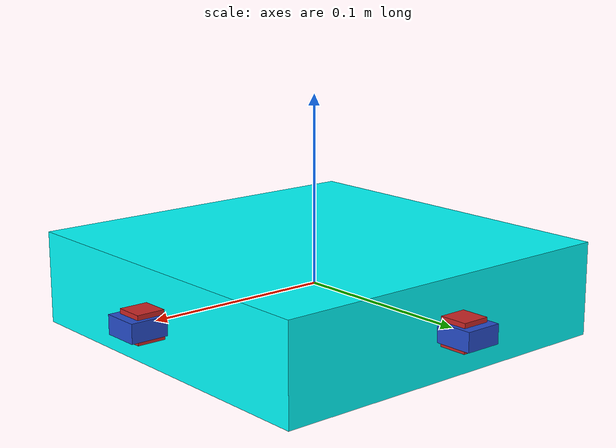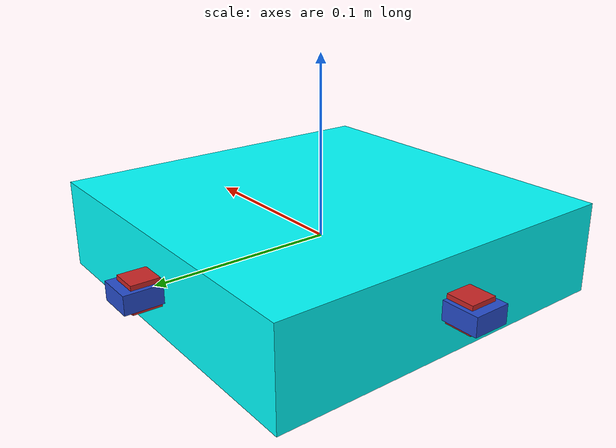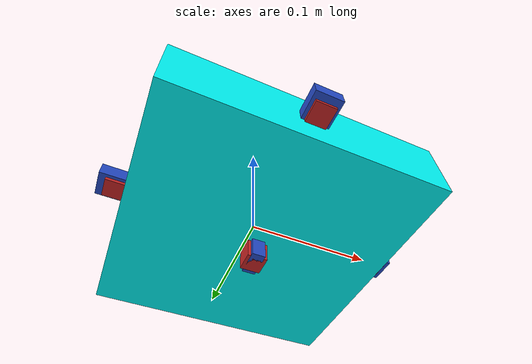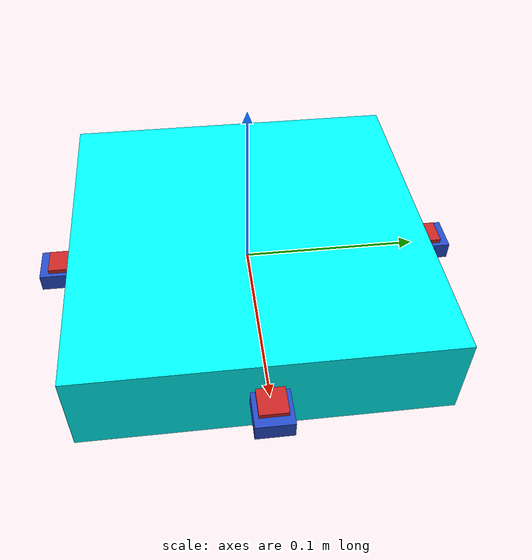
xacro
<?xml version='1.0'?>

<robot name="robot" xmlns:xacro="http://www.ros.org/wiki/xacro">

  <!-- ==================== PROPERTIES ==================== -->

  <xacro:property name="camera_width"  value="0.02"/>
  <xacro:property name="camera_length" value="0.02"/>
  <xacro:property name="camera_height" value="0.01"/>
  <xacro:property name="camera_mass"   value="0.01"/>

  <xacro:property name="chassis_width"  value="0.2"/>
  <xacro:property name="chassis_length" value="0.2"/>
  <xacro:property name="chassis_height" value="0.05"/>
  <xacro:property name="chassis_mass"   value="20"/>

  <xacro:property name="range_sensor_size" value="0.015"/>
  <xacro:property name="range_sensor_mass" value="0.01"/>
  <xacro:property name="range_min"         value="0.02"/>
  <xacro:property name="range_max"         value="5.0"/>
  <xacro:property name="range_resolution"  value="0.01"/>

  <!-- ==================== INCLUDES ==================== -->

  <xacro:include filename="$(find robbie2)/urdf/macros.xacro"/>
  <xacro:include filename="$(find robbie2)/urdf/materials.xacro"/>

  <!-- ==================== MACRO: camera_sensor ==================== -->

  <xacro:macro name="camera_sensor" params="name parent xyz rpy">
    <link name="${name}_link">
      <xacro:box_inertial name="${name}_link" m="${camera_mass}"
                          x="${camera_length}" y="${camera_width}" z="${camera_height}"/>
      <collision name="${name}_collision">
        <geometry><box size="${camera_length} ${camera_width} ${camera_height}"/></geometry>
      </collision>
      <visual name="${name}_visual">
        <geometry><box size="${camera_length} ${camera_width} ${camera_height}"/></geometry>
      </visual>
    </link>

    <joint name="${name}_joint" type="fixed">
      <parent link="${parent}"/>
      <child  link="${name}_link"/>
      <origin xyz="${xyz}" rpy="${rpy}"/>
    </joint>

    <gazebo reference="${name}_link">
      <material>Gazebo/Blue</material>
    </gazebo>

    <gazebo reference="${name}_link">
      <sensor type="camera" name="${name}_sensor">
        <update_rate>30.0</update_rate>
        <camera name="${name}">
          <horizontal_fov>1.3962634</horizontal_fov>
          <image>
            <width>800</width>
            <height>800</height>
            <format>R8G8B8</format>
          </image>
          <clip>
            <near>0.02</near>
            <far>300</far>
          </clip>
          <noise>
            <type>gaussian</type>
            <mean>0.0</mean>
            <stddev>0.007</stddev>
          </noise>
        </camera>
        <plugin name="${name}_controller" filename="libgazebo_ros_camera.so">
          <alwaysOn>true</alwaysOn>
          <updateRate>0.0</updateRate>
          <cameraName>robot/${name}</cameraName>
          <imageTopicName>image_raw</imageTopicName>
          <cameraInfoTopicName>camera_info</cameraInfoTopicName>
          <frameName>${name}_link</frameName>
        </plugin>
      </sensor>
    </gazebo>
  </xacro:macro>

  <!-- ==================== MACRO: range_sensor ==================== -->

  <xacro:macro name="range_sensor" params="name parent xyz rpy topic">
    <link name="${name}_link">
      <xacro:box_inertial name="${name}_link" m="${range_sensor_mass}"
                          x="${range_sensor_size}" y="${range_sensor_size}" z="${range_sensor_size}"/>
      <collision name="${name}_collision">
        <geometry><box size="${range_sensor_size} ${range_sensor_size} ${range_sensor_size}"/></geometry>
      </collision>
      <visual name="${name}_visual">
        <geometry><box size="${range_sensor_size} ${range_sensor_size} ${range_sensor_size}"/></geometry>
      </visual>
    </link>

    <joint name="${name}_joint" type="fixed">
      <parent link="${parent}"/>
      <child  link="${name}_link"/>
      <origin xyz="${xyz}" rpy="${rpy}"/>
    </joint>

    <gazebo reference="${name}_link">
      <material>Gazebo/Red</material>
    </gazebo>

    <gazebo reference="${name}_link">
      <sensor type="ray" name="${name}_sensor">
        <update_rate>20.0</update_rate>
        <ray>
          <scan>
            <horizontal>
              <samples>1</samples>
              <resolution>1</resolution>
              <min_angle>0.0</min_angle>
              <max_angle>0.0</max_angle>
            </horizontal>
          </scan>
          <range>
            <min>${range_min}</min>
            <max>${range_max}</max>
            <resolution>${range_resolution}</resolution>
          </range>
        </ray>
        <plugin name="${name}_plugin" filename="libgazebo_ros_range.so">
          <robotNamespace>/B1</robotNamespace>
          <topicName>${topic}</topicName>
          <frameName>${name}_link</frameName>
          <radiation>infrared</radiation>
          <fov>0.05</fov>
          <gaussianNoise>0.0</gaussianNoise>
        </plugin>
      </sensor>
    </gazebo>
  </xacro:macro>

  <!-- ==================== CHASSIS ==================== -->

  <link name='chassis'>
    <xacro:box_inertial name="chassis" m="${chassis_mass}"
                        x="${chassis_length}" y="${chassis_width}" z="${chassis_height}"/>
    <collision name='chassis_collision'>
      <geometry><box size="${chassis_length} ${chassis_width} ${chassis_height}"/></geometry>
    </collision>
    <visual name='chassis_visual'>
      <origin xyz="0 0 0" rpy="0 0 0"/>
      <geometry><box size="${chassis_length} ${chassis_width} ${chassis_height}"/></geometry>
      <material name="Cyan">
        <color rgba="0 1.0 1.0 1.0"/>
      </material>
    </visual>
  </link>

  <!-- ==================== CAMERAS ==================== -->

  <!-- front: looks along +X -->
  <xacro:camera_sensor name="camera_front" parent="chassis"
    xyz="${chassis_length/2 + camera_length/2} 0 0"
    rpy="0 0 0"/>

  <!-- back: looks along -X -->
  <xacro:camera_sensor name="camera_back" parent="chassis"
    xyz="-${chassis_length/2 + camera_length/2} 0 0"
    rpy="0 0 3.14159265359"/>

  <!-- left: looks along +Y -->
  <xacro:camera_sensor name="camera_left" parent="chassis"
    xyz="0 ${chassis_width/2 + camera_length/2} 0"
    rpy="0 0 1.5707963268"/>

  <!-- right: looks along -Y -->
  <xacro:camera_sensor name="camera_right" parent="chassis"
    xyz="0 -${chassis_width/2 + camera_length/2} 0"
    rpy="0 0 -1.5707963268"/>

  <!-- down: looks along -Z (pitch +90 deg rotates +X to -Z) -->
  <xacro:camera_sensor name="camera_down" parent="chassis"
    xyz="0 0 -${chassis_height/2 + camera_height/2}"
    rpy="0 1.5707963268 0"/>

  <!-- ==================== RANGE SENSORS ==================== -->

  <xacro:range_sensor name="range_front" parent="chassis"
    xyz="${chassis_length/2 + range_sensor_size/2} 0 0"
    rpy="0 0 0" topic="range_front"/>

  <xacro:range_sensor name="range_back" parent="chassis"
    xyz="-${chassis_length/2 + range_sensor_size/2} 0 0"
    rpy="0 0 3.14159265359" topic="range_back"/>

  <xacro:range_sensor name="range_left" parent="chassis"
    xyz="0 ${chassis_width/2 + range_sensor_size/2} 0"
    rpy="0 0 1.5707963268" topic="range_left"/>

  <xacro:range_sensor name="range_right" parent="chassis"
    xyz="0 -${chassis_width/2 + range_sensor_size/2} 0"
    rpy="0 0 -1.5707963268" topic="range_right"/>

  <xacro:range_sensor name="range_down" parent="chassis"
    xyz="0 0 -${chassis_height/2 + range_sensor_size/2}"
    rpy="0 1.5707963268 0" topic="range_down"/>

  <!-- ==================== GAZEBO PLUGINS ==================== -->

  <gazebo reference="chassis">
    <material>Gazebo/Orange</material>
    <enable_wind>true</enable_wind>
  </gazebo>

  <!-- Force controller: subscribe to /B1/cmd_force (geometry_msgs/Wrench) -->
  <gazebo>
    <plugin name="force_controller" filename="libgazebo_ros_force.so">
      <bodyName>chassis</bodyName>
      <topicName>/B1/cmd_force</topicName>
    </plugin>
  </gazebo>

</robot>
